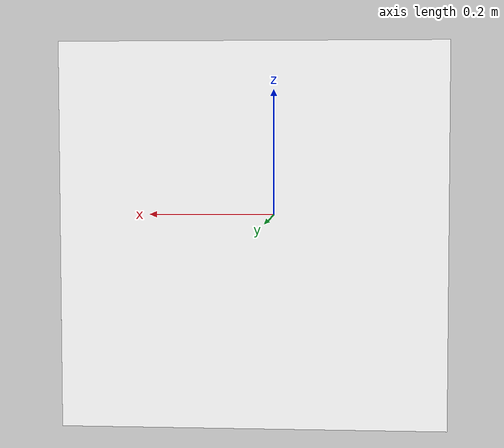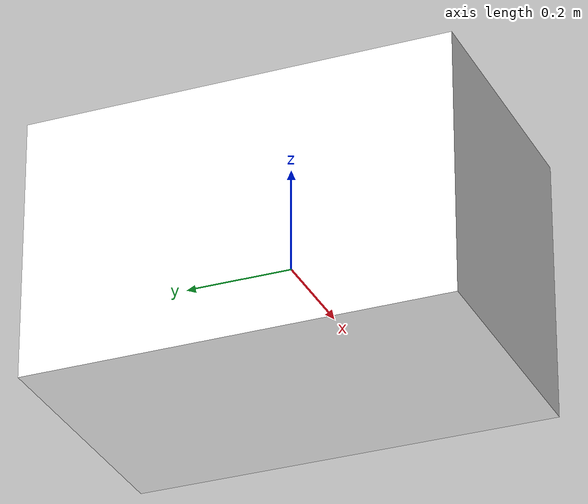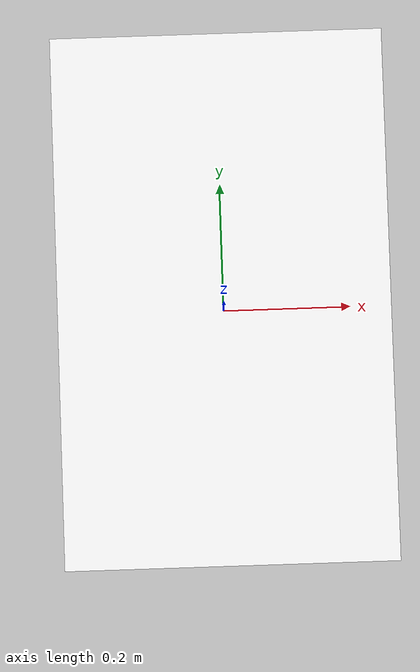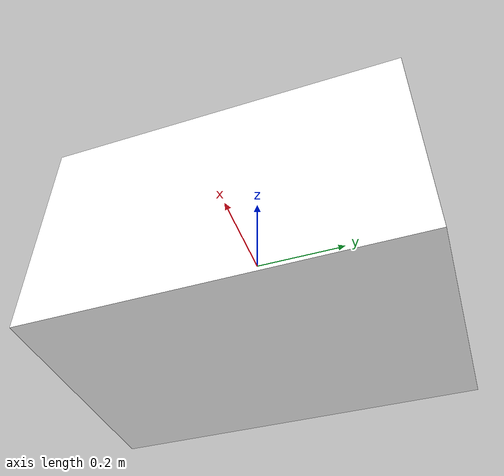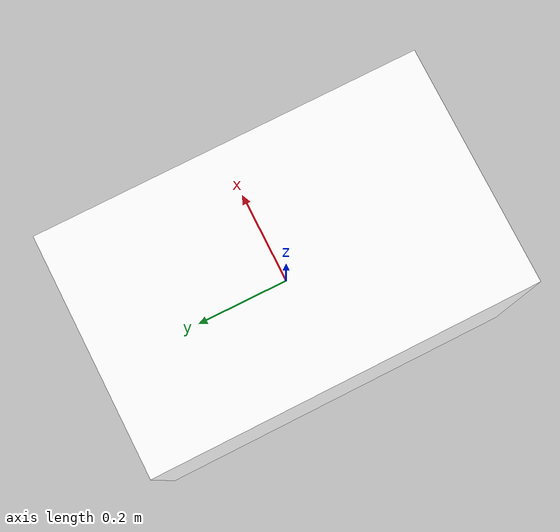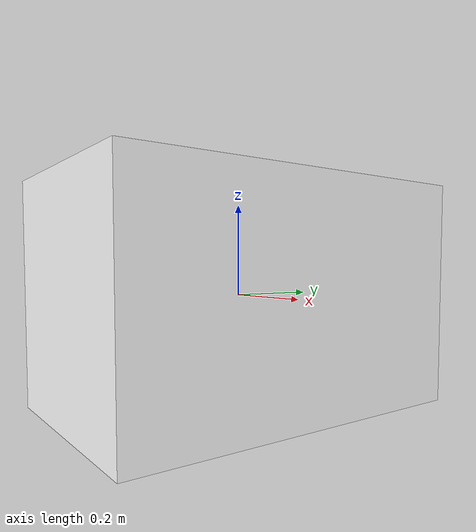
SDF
<?xml version="1.0" ?>
<sdf version="1.8">
  <model name="caja_libros">
    <static>true</static>
    <link name="link">
      <collision name="collision">
        <geometry>
          <box>
            <size>0.5 0.8 0.5</size>
          </box>
        </geometry>
      </collision>
      <visual name="visual">
        <geometry>
          <box>
            <size>0.5 0.8 0.5</size>
          </box>
        </geometry>
        <material>
          <ambient>1 1 1 1</ambient>
          <diffuse>1 1 1 1</diffuse>
          <pbr>
            <metal>
              <albedo_map>materials/textures/codigobarraslibros.png</albedo_map>
              <emissive_map>materials/textures/codigobarraslibros.png</emissive_map>
              <roughness>1.0</roughness>
              <metalness>0.0</metalness>
            </metal>
          </pbr>
        </material>
      </visual>
    </link>
  </model>
</sdf>
